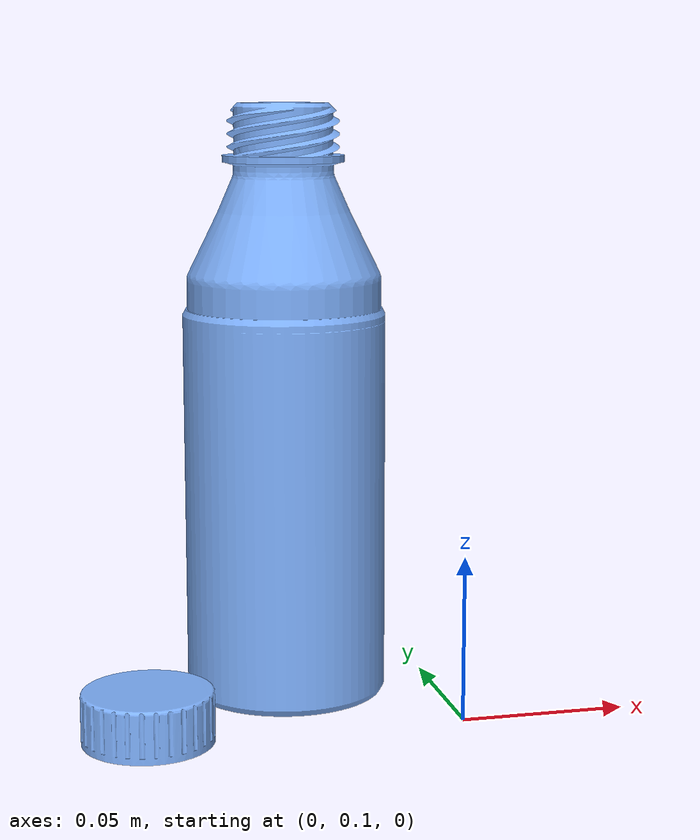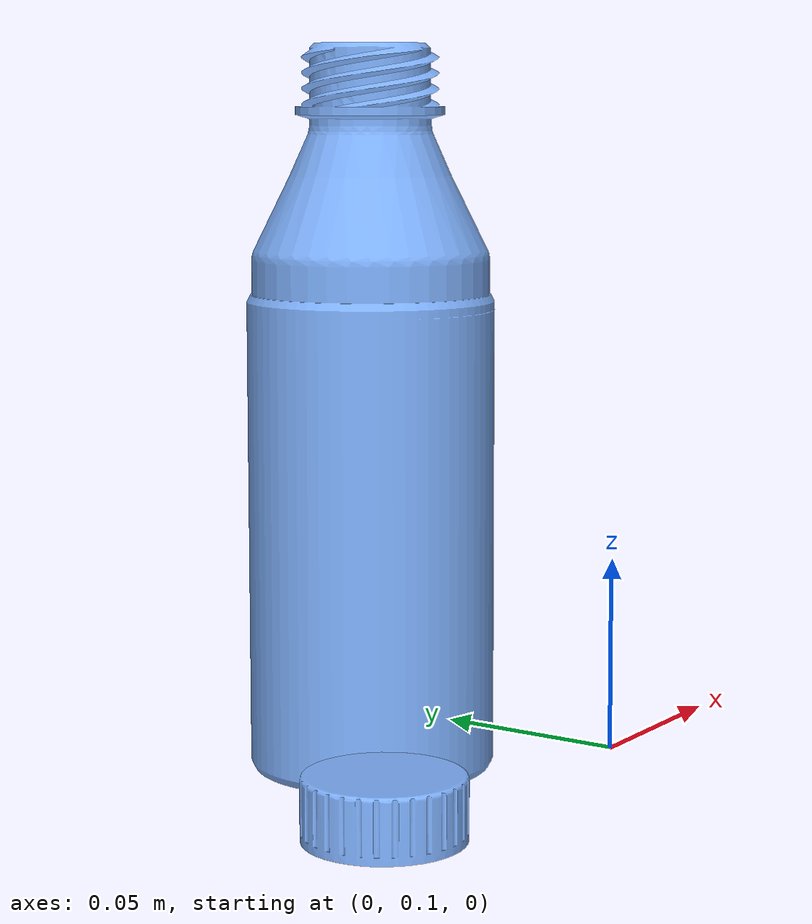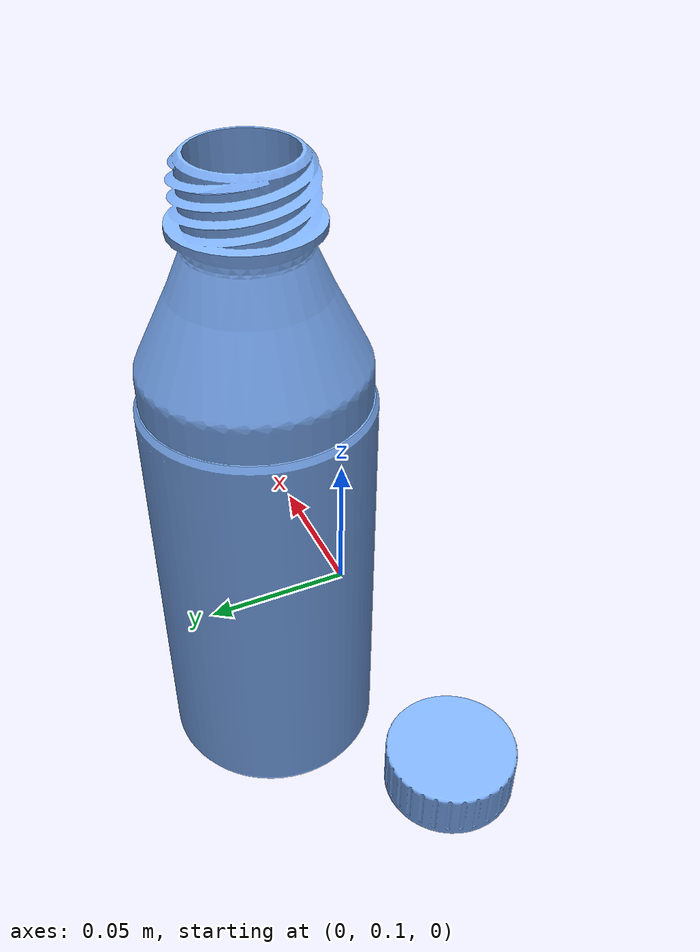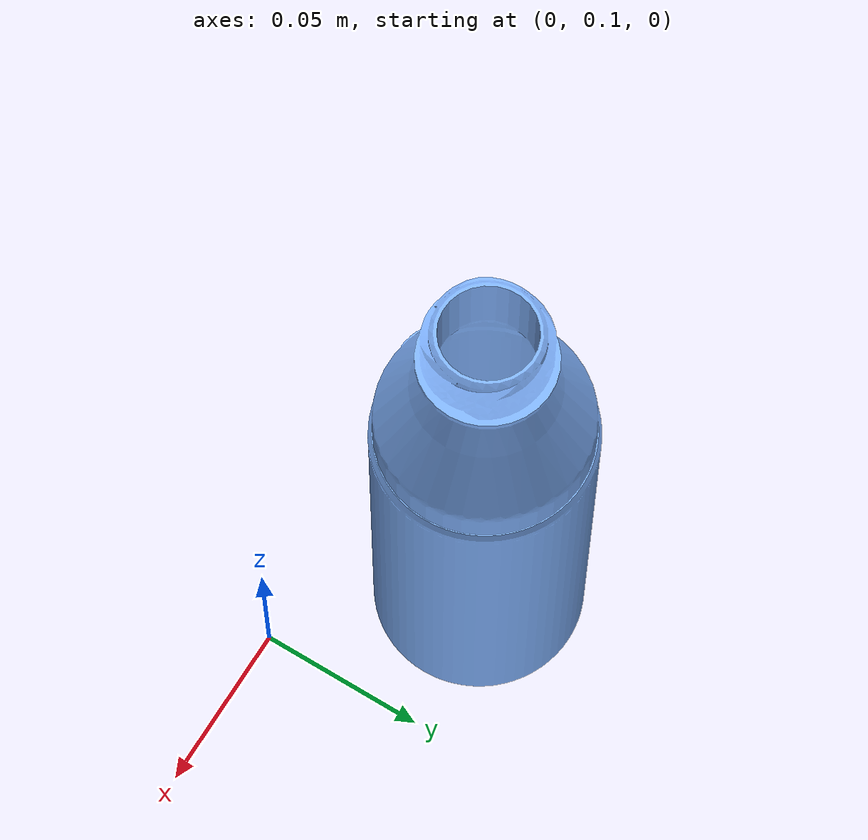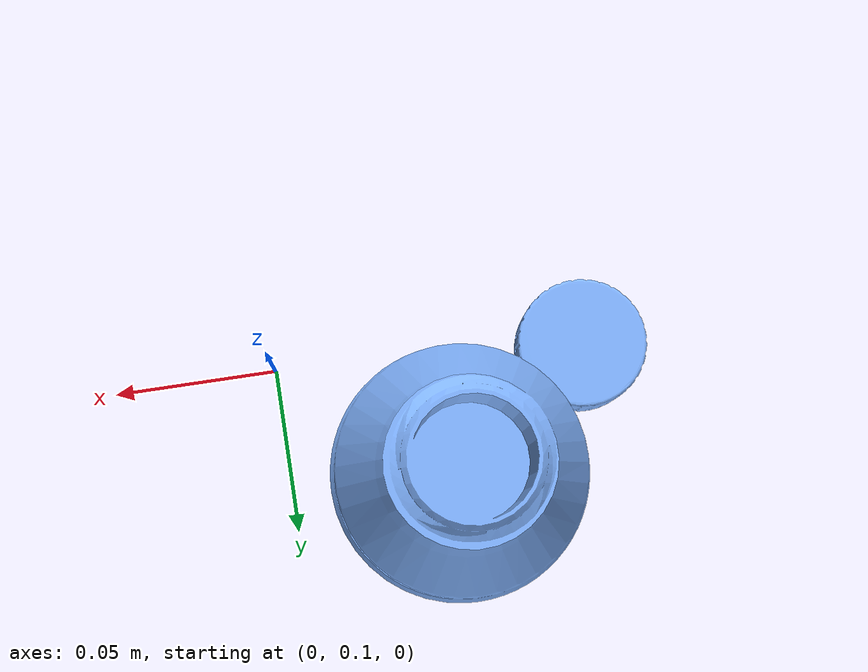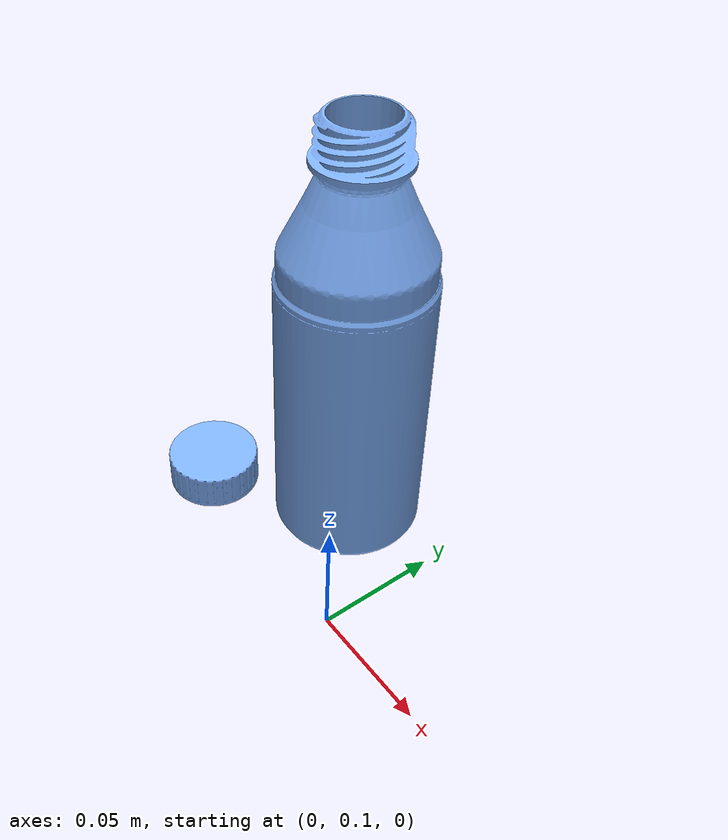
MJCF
<mujoco model="pnp_water_bottle">
    <compiler angle="degree" coordinate="local" />
    <option timestep="0.01" gravity="0 0 -9.81"/>

    <asset>
        <mesh name="water_bottle_vis" file="visual/water_bottle.stl" scale="0.001 0.001 0.001" />
        <mesh name="water_bottle_mesh" file="collision/water_bottle.stl" scale="0.001 0.001 0.001" />
        <material name="mat" rgba="0.5 0.7 1 1" specular="0.0" shininess="0.0"/>
    </asset>

    <worldbody>
        <body>
            <body name="object" pos="0 0 0">
                <geom solimp="0.998 0.998 0.001"
                      solref="0.001 1"
                      density="100"
                      friction="0.8 0.1 0.1"
                      type="mesh"
                      mesh="water_bottle_vis"
                      conaffinity="0"
                      contype="0"
                      group="1"
                      material="mat" />
                <geom name="water_bottle_geom"
                      type="mesh"
                      mesh="water_bottle_mesh"
                      rgba="0.5 0.7 1 1"
                      mass="0.5"
                      group="0" />
            </body>

            <site rgba="0 0 0 0"
                  size="0.005"
                  pos="1.8e-09 0.0001579002 -0.03245274"
                  name="bottom_site"/>
            <site rgba="0 0 0 0"
                  size="0.005"
                  pos="1.8e-09 0.0001579002 0.03305049"
                  name="top_site"/>
            <site rgba="0 0 0 0"
                  size="0.005"
                  pos="0.0589176144 0.0575673768 0.000298875"
                  name="horizontal_radius_site"/>
        </body>
    </worldbody>
</mujoco>
